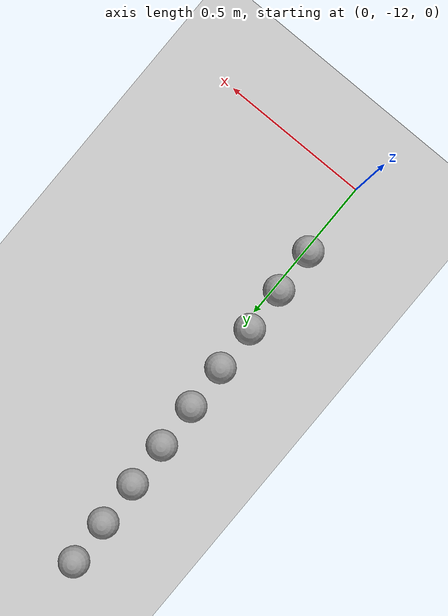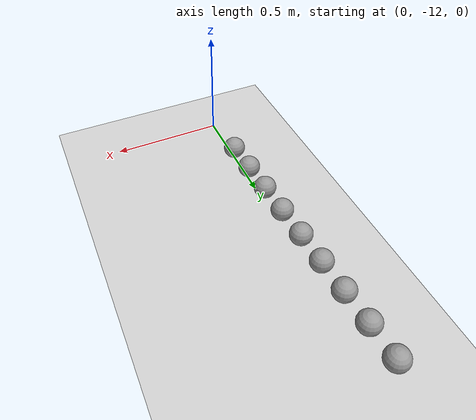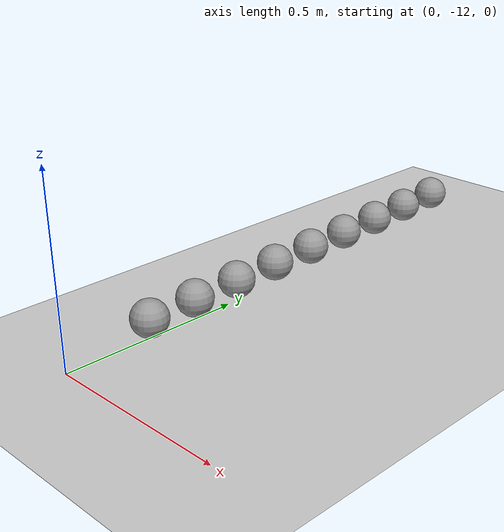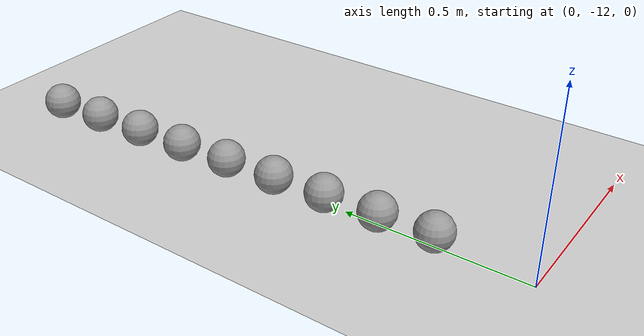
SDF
<sdf version="1.6">
 <world name="default">
  <model name="ground_plane">
   <static>1</static>
   <link name="link">
    <collision name="collision">
     <geometry><plane><normal>0 0 1</normal><size>100 100</size></plane></geometry>
     <surface><friction><ode><mu>100</mu><mu2>50</mu2></ode></friction></surface>
    </collision>
    <visual name="visual">
     <cast_shadows>0</cast_shadows>
     <geometry><plane><normal>0 0 1</normal><size>100 100</size></plane></geometry>
     <material>
      <script><uri>file://media/materials/scripts/gazebo.material</uri><name>Gazebo/Grey</name></script>
     </material>
    </visual>
   </link>
  </model>
  <model name="unit_sphere_0_611">
   <pose>-0.007000 -11.750000 0.050000 0 -0 0</pose>
   <link name="link">
    <inertial>
     <mass>1</mass>
     <inertia><ixx>0.1</ixx><ixy>0</ixy><ixz>0</ixz><iyy>0.1</iyy><iyz>0</iyz><izz>0.1</izz></inertia>
    </inertial>
    <collision name="collision"><geometry><sphere><radius>0.050000</radius></sphere></geometry></collision>
    <visual name="visual">
     <geometry><sphere><radius>0.050000</radius></sphere></geometry>
     <material>
      <script><name>Gazebo/Grey</name><uri>file://media/materials/scripts/gazebo.material</uri></script>
     </material>
    </visual>
   </link>
  </model>
  <model name="unit_sphere_0_612">
   <pose>-0.014000 -11.600000 0.050000 0 -0 0</pose>
   <link name="link">
    <inertial>
     <mass>1</mass>
     <inertia><ixx>0.1</ixx><ixy>0</ixy><ixz>0</ixz><iyy>0.1</iyy><iyz>0</iyz><izz>0.1</izz></inertia>
    </inertial>
    <collision name="collision"><geometry><sphere><radius>0.050000</radius></sphere></geometry></collision>
    <visual name="visual">
     <geometry><sphere><radius>0.050000</radius></sphere></geometry>
     <material>
      <script><name>Gazebo/Grey</name><uri>file://media/materials/scripts/gazebo.material</uri></script>
     </material>
    </visual>
   </link>
  </model>
  <model name="unit_sphere_0_613">
   <pose>-0.021000 -11.450000 0.050000 0 -0 0</pose>
   <link name="link">
    <inertial>
     <mass>1</mass>
     <inertia><ixx>0.1</ixx><ixy>0</ixy><ixz>0</ixz><iyy>0.1</iyy><iyz>0</iyz><izz>0.1</izz></inertia>
    </inertial>
    <collision name="collision"><geometry><sphere><radius>0.050000</radius></sphere></geometry></collision>
    <visual name="visual">
     <geometry><sphere><radius>0.050000</radius></sphere></geometry>
     <material>
      <script><name>Gazebo/Grey</name><uri>file://media/materials/scripts/gazebo.material</uri></script>
     </material>
    </visual>
   </link>
  </model>
  <model name="unit_sphere_0_614">
   <pose>-0.028000 -11.300000 0.050000 0 -0 0</pose>
   <link name="link">
    <inertial>
     <mass>1</mass>
     <inertia><ixx>0.1</ixx><ixy>0</ixy><ixz>0</ixz><iyy>0.1</iyy><iyz>0</iyz><izz>0.1</izz></inertia>
    </inertial>
    <collision name="collision"><geometry><sphere><radius>0.050000</radius></sphere></geometry></collision>
    <visual name="visual">
     <geometry><sphere><radius>0.050000</radius></sphere></geometry>
     <material>
      <script><name>Gazebo/Grey</name><uri>file://media/materials/scripts/gazebo.material</uri></script>
     </material>
    </visual>
   </link>
  </model>
  <model name="unit_sphere_0_615">
   <pose>-0.035000 -11.150000 0.050000 0 -0 0</pose>
   <link name="link">
    <inertial>
     <mass>1</mass>
     <inertia><ixx>0.1</ixx><ixy>0</ixy><ixz>0</ixz><iyy>0.1</iyy><iyz>0</iyz><izz>0.1</izz></inertia>
    </inertial>
    <collision name="collision"><geometry><sphere><radius>0.050000</radius></sphere></geometry></collision>
    <visual name="visual">
     <geometry><sphere><radius>0.050000</radius></sphere></geometry>
     <material>
      <script><name>Gazebo/Grey</name><uri>file://media/materials/scripts/gazebo.material</uri></script>
     </material>
    </visual>
   </link>
  </model>
  <model name="unit_sphere_0_616">
   <pose>-0.042000 -11.000000 0.050000 0 -0 0</pose>
   <link name="link">
    <inertial>
     <mass>1</mass>
     <inertia><ixx>0.1</ixx><ixy>0</ixy><ixz>0</ixz><iyy>0.1</iyy><iyz>0</iyz><izz>0.1</izz></inertia>
    </inertial>
    <collision name="collision"><geometry><sphere><radius>0.050000</radius></sphere></geometry></collision>
    <visual name="visual">
     <geometry><sphere><radius>0.050000</radius></sphere></geometry>
     <material>
      <script><name>Gazebo/Grey</name><uri>file://media/materials/scripts/gazebo.material</uri></script>
     </material>
    </visual>
   </link>
  </model>
  <model name="unit_sphere_0_617">
   <pose>-0.049000 -10.850000 0.050000 0 -0 0</pose>
   <link name="link">
    <inertial>
     <mass>1</mass>
     <inertia><ixx>0.1</ixx><ixy>0</ixy><ixz>0</ixz><iyy>0.1</iyy><iyz>0</iyz><izz>0.1</izz></inertia>
    </inertial>
    <collision name="collision"><geometry><sphere><radius>0.050000</radius></sphere></geometry></collision>
    <visual name="visual">
     <geometry><sphere><radius>0.050000</radius></sphere></geometry>
     <material>
      <script><name>Gazebo/Grey</name><uri>file://media/materials/scripts/gazebo.material</uri></script>
     </material>
    </visual>
   </link>
  </model>
  <model name="unit_sphere_0_618">
   <pose>-0.056000 -10.700000 0.050000 0 -0 0</pose>
   <link name="link">
    <inertial>
     <mass>1</mass>
     <inertia><ixx>0.1</ixx><ixy>0</ixy><ixz>0</ixz><iyy>0.1</iyy><iyz>0</iyz><izz>0.1</izz></inertia>
    </inertial>
    <collision name="collision"><geometry><sphere><radius>0.050000</radius></sphere></geometry></collision>
    <visual name="visual">
     <geometry><sphere><radius>0.050000</radius></sphere></geometry>
     <material>
      <script><name>Gazebo/Grey</name><uri>file://media/materials/scripts/gazebo.material</uri></script>
     </material>
    </visual>
   </link>
  </model>
  <model name="unit_sphere_0_619">
   <pose>-0.063000 -10.550000 0.050000 0 -0 0</pose>
   <link name="link">
    <inertial>
     <mass>1</mass>
     <inertia><ixx>0.1</ixx><ixy>0</ixy><ixz>0</ixz><iyy>0.1</iyy><iyz>0</iyz><izz>0.1</izz></inertia>
    </inertial>
    <collision name="collision"><geometry><sphere><radius>0.050000</radius></sphere></geometry></collision>
    <visual name="visual">
     <geometry><sphere><radius>0.050000</radius></sphere></geometry>
     <material>
      <script><name>Gazebo/Grey</name><uri>file://media/materials/scripts/gazebo.material</uri></script>
     </material>
    </visual>
   </link>
  </model>
 </world>
</sdf>
